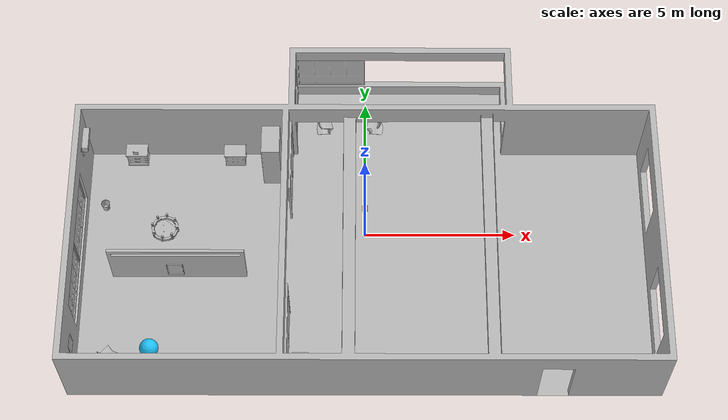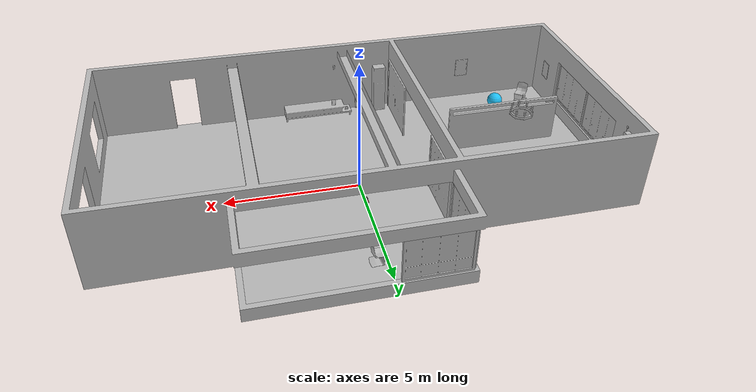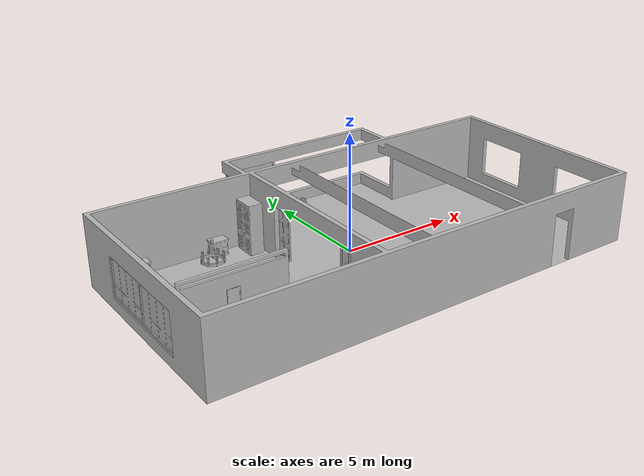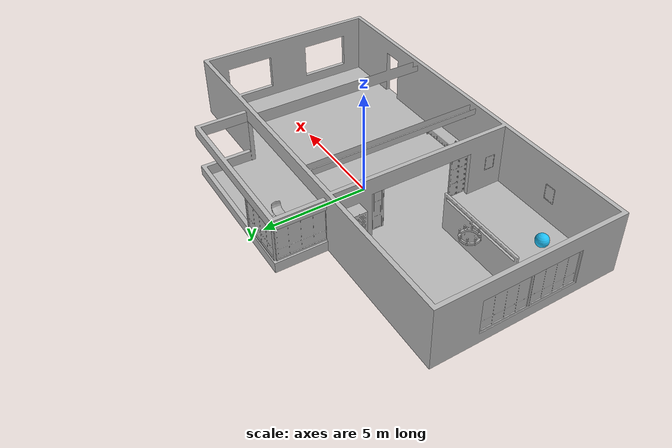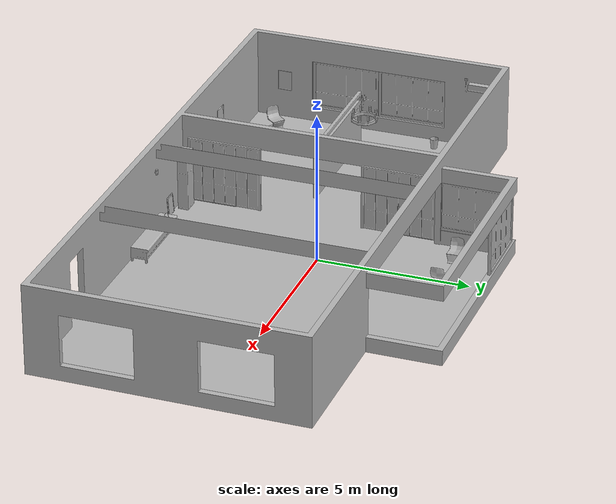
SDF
<sdf version="1.7">
 <world name="default">
  <model name="AirconditionerA_01_001">
   <frame name="aws_robomaker_residential_AirconditionerA_01::__model__" attached_to="aws_robomaker_residential_AirconditionerA_01::link">
    <pose relative_to="__model__">0 0 0 0 -0 0</pose>
   </frame>
   <link name="aws_robomaker_residential_AirconditionerA_01::link">
    <inertial><mass>1</mass></inertial>
    <collision name="collision">
     <geometry>
      <mesh>
       <uri>model:///aws_robomaker_residential_AirconditionerA_01/meshes/aws_AirconditionerA_01_collision.DAE</uri>
       <scale>1 1 1</scale>
      </mesh>
     </geometry>
    </collision>
    <visual name="visual">
     <geometry>
      <mesh>
       <uri>model:///aws_robomaker_residential_AirconditionerA_01/meshes/aws_AirconditionerA_01_visual.DAE</uri>
      </mesh>
     </geometry>
     <meta><layer>1</layer></meta>
    </visual>
    <pose relative_to="aws_robomaker_residential_AirconditionerA_01::__model__">0 0 0 0 -0 0</pose>
   </link>
   <static>1</static>
   <pose>-9.19941 2.41123 2.08454 0 -0 0</pose>
  </model>
  <model name="AirconditionerB_01_001">
   <frame name="aws_robomaker_residential_AirconditionerB_01::__model__" attached_to="aws_robomaker_residential_AirconditionerB_01::link">
    <pose relative_to="__model__">0 0 0 0 -0 0</pose>
   </frame>
   <link name="aws_robomaker_residential_AirconditionerB_01::link">
    <inertial>
     <mass>1</mass>
     <inertia><ixx>1</ixx><ixy>0</ixy><ixz>0</ixz><iyy>1</iyy><iyz>0</iyz><izz>1</izz></inertia>
    </inertial>
    <collision name="collision">
     <geometry>
      <mesh>
       <uri>model:///aws_robomaker_residential_AirconditionerB_01/meshes/aws_AirconditionerB_01_collision.DAE</uri>
       <scale>1 1 1</scale>
      </mesh>
     </geometry>
    </collision>
    <visual name="visual">
     <geometry>
      <mesh>
       <uri>model:///aws_robomaker_residential_AirconditionerB_01/meshes/aws_AirconditionerB_01_visual.DAE</uri>
      </mesh>
     </geometry>
     <meta><layer>1</layer></meta>
    </visual>
    <pose relative_to="aws_robomaker_residential_AirconditionerB_01::__model__">0 0 0 0 -0 0</pose>
   </link>
   <pose>-2.00466 -5.22661 0.003485 0 -0 0</pose>
  </model>
  <model name="Ball_01_003">
   <frame name="aws_robomaker_residential_Ball_01::__model__" attached_to="aws_robomaker_residential_Ball_01::link">
    <pose relative_to="__model__">0 0 0 0 -0 0</pose>
   </frame>
   <link name="aws_robomaker_residential_Ball_01::link">
    <inertial>
     <mass>0.12</mass>
     <inertia>
      <ixx>0.030752</ixx>
      <ixy>0</ixy>
      <ixz>0</ixz>
      <iyy>0.030752</iyy>
      <iyz>0</iyz>
      <izz>0.030752</izz>
     </inertia>
    </inertial>
    <collision name="collision">
     <geometry><sphere><radius>0.31</radius></sphere></geometry>
     <surface>
      <friction><ode><mu>0.85</mu><mu2>0.85</mu2></ode></friction>
      <contact><ode><kd>8500</kd><max_vel>5.1</max_vel></ode></contact>
     </surface>
    </collision>
    <visual name="visual">
     <geometry><sphere><radius>0.31</radius></sphere></geometry>
     <material><diffuse>0.12 0.76 0.97 1</diffuse><ambient>0.03 0.21 0.27 1</ambient></material>
     <meta><layer>1</layer></meta>
    </visual>
    <pose relative_to="aws_robomaker_residential_Ball_01::__model__">0 0 0 0 -0 0</pose>
   </link>
   <pose>-6.9455 -4.22174 0.318684 0 -0 0</pose>
  </model>
  <model name="NightStand_01_001">
   <frame name="aws_robomaker_residential_NightStand_01::__model__" attached_to="aws_robomaker_residential_NightStand_01::link">
    <pose relative_to="__model__">0 0 0 0 -0 0</pose>
   </frame>
   <link name="aws_robomaker_residential_NightStand_01::link">
    <inertial>
     <mass>13.6</mass>
     <inertia><ixx>0.6165</ixx><ixy>0</ixy><ixz>0</ixz><iyy>1.29664</iyy><iyz>0</iyz><izz>0.7706</izz></inertia>
    </inertial>
    <collision name="collision">
     <geometry>
      <mesh>
       <uri>model:///aws_robomaker_residential_NightStand_01/meshes/aws_NightStand_01_collision.DAE</uri>
       <scale>1 1 1</scale>
      </mesh>
     </geometry>
    </collision>
    <visual name="visual">
     <geometry>
      <mesh><uri>model:///aws_robomaker_residential_NightStand_01/meshes/aws_NightStand_01_visual.DAE</uri></mesh>
     </geometry>
     <meta><layer>1</layer></meta>
    </visual>
    <pose relative_to="aws_robomaker_residential_NightStand_01::__model__">0 0 0 0 -0 0</pose>
   </link>
   <static>0</static>
   <pose>-7.72551 2.86042 0.005258 -2e-06 0 0</pose>
  </model>
  <model name="NightStand_01_002">
   <frame name="aws_robomaker_residential_NightStand_01::__model__" attached_to="aws_robomaker_residential_NightStand_01::link">
    <pose relative_to="__model__">0 0 0 0 -0 0</pose>
   </frame>
   <link name="aws_robomaker_residential_NightStand_01::link">
    <inertial>
     <mass>13.6</mass>
     <inertia><ixx>0.6165</ixx><ixy>0</ixy><ixz>0</ixz><iyy>1.29664</iyy><iyz>0</iyz><izz>0.7706</izz></inertia>
    </inertial>
    <collision name="collision">
     <geometry>
      <mesh>
       <uri>model:///aws_robomaker_residential_NightStand_01/meshes/aws_NightStand_01_collision.DAE</uri>
       <scale>1 1 1</scale>
      </mesh>
     </geometry>
    </collision>
    <visual name="visual">
     <geometry>
      <mesh><uri>model:///aws_robomaker_residential_NightStand_01/meshes/aws_NightStand_01_visual.DAE</uri></mesh>
     </geometry>
     <meta><layer>1</layer></meta>
    </visual>
    <pose relative_to="aws_robomaker_residential_NightStand_01::__model__">0 0 0 0 -0 0</pose>
   </link>
   <static>0</static>
   <pose>-4.40734 2.86042 0.005256 0 2e-06 0</pose>
  </model>
  <model name="ChairD_01_001">
   <frame name="aws_robomaker_residential_ChairD_01::__model__" attached_to="aws_robomaker_residential_ChairD_01::link">
    <pose relative_to="__model__">0 0 0 0 -0 0</pose>
   </frame>
   <link name="aws_robomaker_residential_ChairD_01::link">
    <inertial>
     <mass>4.5</mass>
     <inertia><ixy>0</ixy><ixz>0</ixz><iyz>0</iyz><ixx>0.217</ixx><iyy>0.217</iyy><izz>0.067</izz></inertia>
    </inertial>
    <collision name="collision">
     <geometry>
      <mesh>
       <uri>model:///aws_robomaker_residential_ChairD_01/meshes/aws_ChairD_01_collision.DAE</uri>
       <scale>1 1 1</scale>
      </mesh>
     </geometry>
    </collision>
    <visual name="visual">
     <geometry>
      <mesh><uri>model:///aws_robomaker_residential_ChairD_01/meshes/aws_ChairD_01_visual.DAE</uri></mesh>
     </geometry>
     <meta><layer>1</layer></meta>
    </visual>
    <pose relative_to="aws_robomaker_residential_ChairD_01::__model__">0 0 0 0 -0 0</pose>
   </link>
   <pose>-1.38078 4.10446 0 0 -0 0</pose>
  </model>
  <model name="ChairD_01_002">
   <frame name="aws_robomaker_residential_ChairD_01::__model__" attached_to="aws_robomaker_residential_ChairD_01::link">
    <pose relative_to="__model__">0 0 0 0 -0 0</pose>
   </frame>
   <link name="aws_robomaker_residential_ChairD_01::link">
    <inertial>
     <mass>4.5</mass>
     <inertia><ixy>0</ixy><ixz>0</ixz><iyz>0</iyz><ixx>0.217</ixx><iyy>0.217</iyy><izz>0.067</izz></inertia>
    </inertial>
    <collision name="collision">
     <geometry>
      <mesh>
       <uri>model:///aws_robomaker_residential_ChairD_01/meshes/aws_ChairD_01_collision.DAE</uri>
       <scale>1 1 1</scale>
      </mesh>
     </geometry>
    </collision>
    <visual name="visual">
     <geometry>
      <mesh><uri>model:///aws_robomaker_residential_ChairD_01/meshes/aws_ChairD_01_visual.DAE</uri></mesh>
     </geometry>
     <meta><layer>1</layer></meta>
    </visual>
    <pose relative_to="aws_robomaker_residential_ChairD_01::__model__">0 0 0 0 -0 0</pose>
   </link>
   <pose>0.325214 4.10446 0 0 0 -3.13874</pose>
  </model>
  <model name="ChairD_01_003">
   <frame name="aws_robomaker_residential_ChairD_01::__model__" attached_to="aws_robomaker_residential_ChairD_01::link">
    <pose relative_to="__model__">0 0 0 0 -0 0</pose>
   </frame>
   <link name="aws_robomaker_residential_ChairD_01::link">
    <inertial>
     <mass>4.5</mass>
     <inertia><ixy>0</ixy><ixz>0</ixz><iyz>0</iyz><ixx>0.217</ixx><iyy>0.217</iyy><izz>0.067</izz></inertia>
    </inertial>
    <collision name="collision">
     <geometry>
      <mesh>
       <uri>model:///aws_robomaker_residential_ChairD_01/meshes/aws_ChairD_01_collision.DAE</uri>
       <scale>1 1 1</scale>
      </mesh>
     </geometry>
    </collision>
    <visual name="visual">
     <geometry>
      <mesh><uri>model:///aws_robomaker_residential_ChairD_01/meshes/aws_ChairD_01_visual.DAE</uri></mesh>
     </geometry>
     <meta><layer>1</layer></meta>
    </visual>
    <pose relative_to="aws_robomaker_residential_ChairD_01::__model__">0 0 0 0 -0 0</pose>
   </link>
   <pose>-8.27078 -4.50446 0 0 -0 0.869673</pose>
  </model>
  <model name="Chandelier_01_002">
   <frame name="aws_robomaker_residential_Chandelier_01::__model__" attached_to="aws_robomaker_residential_Chandelier_01::link">
    <pose relative_to="__model__">0 0 0 0 -0 0</pose>
   </frame>
   <link name="aws_robomaker_residential_Chandelier_01::link">
    <inertial><mass>1</mass></inertial>
    <collision name="collision">
     <geometry>
      <mesh>
       <uri>model:///aws_robomaker_residential_Chandelier_01/meshes/aws_Chandelier_01_collision.DAE</uri>
       <scale>1 1 1</scale>
      </mesh>
     </geometry>
    </collision>
    <visual name="visual">
     <geometry>
      <mesh><uri>model:///aws_robomaker_residential_Chandelier_01/meshes/aws_Chandelier_01_visual.DAE</uri></mesh>
     </geometry>
     <meta><layer>2</layer></meta>
    </visual>
    <pose relative_to="aws_robomaker_residential_Chandelier_01::__model__">0 0 0 0 -0 0</pose>
   </link>
   <static>1</static>
   <pose>-6.45106 -0.69204 1.81 0 -0 0</pose>
  </model>
  <model name="FoldingDoor_01_001">
   <frame name="aws_robomaker_residential_FoldingDoor_01::__model__" attached_to="aws_robomaker_residential_FoldingDoor_01::link">
    <pose relative_to="__model__">0 0 0 0 -0 0</pose>
   </frame>
   <link name="aws_robomaker_residential_FoldingDoor_01::link">
    <inertial><mass>1</mass></inertial>
    <collision name="collision">
     <geometry>
      <mesh>
       <uri>model:///aws_robomaker_residential_FoldingDoor_01/meshes/aws_FoldingDoor_01_collision.DAE</uri>
       <scale>1 1 1</scale>
      </mesh>
     </geometry>
    </collision>
    <visual name="visual">
     <geometry>
      <mesh><uri>model:///aws_robomaker_residential_FoldingDoor_01/meshes/aws_FoldingDoor_01_visual.DAE</uri></mesh>
     </geometry>
     <meta><layer>2</layer></meta>
    </visual>
    <pose relative_to="aws_robomaker_residential_FoldingDoor_01::__model__">0 0 0 0 -0 0</pose>
   </link>
   <static>1</static>
   <pose>-2.4611 1.84422 0.041881 0 -0 0</pose>
  </model>
  <model name="FoldingDoor_01_002">
   <frame name="aws_robomaker_residential_FoldingDoor_01::__model__" attached_to="aws_robomaker_residential_FoldingDoor_01::link">
    <pose relative_to="__model__">0 0 0 0 -0 0</pose>
   </frame>
   <link name="aws_robomaker_residential_FoldingDoor_01::link">
    <inertial><mass>1</mass></inertial>
    <collision name="collision">
     <geometry>
      <mesh>
       <uri>model:///aws_robomaker_residential_FoldingDoor_01/meshes/aws_FoldingDoor_01_collision.DAE</uri>
       <scale>1 1 1</scale>
      </mesh>
     </geometry>
    </collision>
    <visual name="visual">
     <geometry>
      <mesh><uri>model:///aws_robomaker_residential_FoldingDoor_01/meshes/aws_FoldingDoor_01_visual.DAE</uri></mesh>
     </geometry>
     <meta><layer>2</layer></meta>
    </visual>
    <pose relative_to="aws_robomaker_residential_FoldingDoor_01::__model__">0 0 0 0 -0 0</pose>
   </link>
   <static>1</static>
   <pose>-2.4611 -4.05332 0.041881 0 -0 0</pose>
  </model>
  <model name="HouseWallB_01_001">
   <frame name="aws_robomaker_residential_HouseWallB_01::__model__" attached_to="aws_robomaker_residential_HouseWallB_01::link">
    <pose relative_to="__model__">0 0 0 0 -0 0</pose>
   </frame>
   <link name="aws_robomaker_residential_HouseWallB_01::link">
    <inertial><mass>1</mass></inertial>
    <collision name="collision">
     <geometry>
      <mesh>
       <uri>model:///aws_robomaker_residential_HouseWallB_01/meshes/aws_HouseWallB_01_collision.DAE</uri>
       <scale>1 1 1</scale>
      </mesh>
     </geometry>
    </collision>
    <visual name="visual">
     <geometry>
      <mesh><uri>model:///aws_robomaker_residential_HouseWallB_01/meshes/aws_HouseWallB_01_visual.DAE</uri></mesh>
     </geometry>
     <meta><layer>2</layer></meta>
    </visual>
    <pose relative_to="aws_robomaker_residential_HouseWallB_01::__model__">0 0 0 0 -0 0</pose>
   </link>
   <static>1</static>
  </model>
  <model name="FloorB_01_001">
   <frame name="aws_robomaker_residential_FloorB_01::__model__" attached_to="aws_robomaker_residential_FloorB_01::link">
    <pose relative_to="__model__">0 0 0 0 -0 0</pose>
   </frame>
   <link name="aws_robomaker_residential_FloorB_01::link">
    <inertial><mass>100</mass></inertial>
    <collision name="collision">
     <geometry>
      <mesh>
       <uri>model:///aws_robomaker_residential_FloorB_01/meshes/aws_FloorB_01_collision.DAE</uri>
       <scale>1 1 0.9</scale>
      </mesh>
     </geometry>
     <surface><friction><ode><mu>0.6</mu><mu2>0.6</mu2></ode></friction></surface>
    </collision>
    <visual name="visual">
     <geometry>
      <mesh><uri>model:///aws_robomaker_residential_FloorB_01/meshes/aws_FloorB_01_visual.DAE</uri></mesh>
     </geometry>
     <meta><layer>1</layer></meta>
    </visual>
    <pose relative_to="aws_robomaker_residential_FloorB_01::__model__">0 0 0 0 -0 0</pose>
   </link>
   <static>1</static>
  </model>
  <model name="LightC_01_002">
   <frame name="aws_robomaker_residential_LightC_01::__model__" attached_to="aws_robomaker_residential_LightC_01::link">
    <pose relative_to="__model__">0 0 0 0 -0 0</pose>
   </frame>
   <link name="aws_robomaker_residential_LightC_01::link">
    <inertial>
     <mass>1</mass>
     <inertia><ixx>1</ixx><ixy>0</ixy><ixz>0</ixz><iyy>1</iyy><iyz>0</iyz><izz>1</izz></inertia>
    </inertial>
    <collision name="collision">
     <geometry>
      <mesh>
       <uri>model:///aws_robomaker_residential_LightC_01/meshes/aws_LightC_01_collision.DAE</uri>
       <scale>1 1 1</scale>
      </mesh>
     </geometry>
    </collision>
    <visual name="visual">
     <geometry>
      <mesh><uri>model:///aws_robomaker_residential_LightC_01/meshes/aws_LightC_01_visual.DAE</uri></mesh>
     </geometry>
     <meta><layer>2</layer></meta>
    </visual>
    <pose relative_to="aws_robomaker_residential_LightC_01::__model__">0 0 0 0 -0 0</pose>
   </link>
   <static>0</static>
   <pose>-0.138245 -5.44437 2 0 -0 0</pose>
  </model>
  <model name="PortraitA_01">
   <frame name="aws_robomaker_residential_PortraitA_01::__model__" attached_to="aws_robomaker_residential_PortraitA_01::link">
    <pose relative_to="__model__">0 0 0 0 -0 0</pose>
   </frame>
   <link name="aws_robomaker_residential_PortraitA_01::link">
    <inertial><mass>1</mass></inertial>
    <collision name="collision">
     <geometry>
      <mesh>
       <uri>model:///aws_robomaker_residential_PortraitA_01/meshes/aws_PortraitA_01_collision.DAE</uri>
       <scale>1 1 1</scale>
      </mesh>
     </geometry>
    </collision>
    <visual name="visual">
     <geometry>
      <mesh><uri>model:///aws_robomaker_residential_PortraitA_01/meshes/aws_PortraitA_01_visual.DAE</uri></mesh>
     </geometry>
     <meta><layer>2</layer></meta>
    </visual>
    <pose relative_to="aws_robomaker_residential_PortraitA_01::__model__">0 0 0 0 -0 0</pose>
   </link>
   <static>1</static>
   <pose>-2.71236 -4.81754 1 0 -0 1.5668</pose>
  </model>
  <model name="PortraitB_01">
   <frame name="aws_robomaker_residential_PortraitB_01::__model__" attached_to="aws_robomaker_residential_PortraitB_01::link">
    <pose relative_to="__model__">0 0 0 0 -0 0</pose>
   </frame>
   <link name="aws_robomaker_residential_PortraitB_01::link">
    <inertial><mass>1</mass></inertial>
    <collision name="collision">
     <geometry>
      <mesh>
       <uri>model:///aws_robomaker_residential_PortraitB_01/meshes/aws_PortraitB_01_collision.DAE</uri>
       <scale>1 1 1</scale>
      </mesh>
     </geometry>
    </collision>
    <visual name="visual">
     <geometry>
      <mesh><uri>model:///aws_robomaker_residential_PortraitB_01/meshes/aws_PortraitB_01_visual.DAE</uri></mesh>
     </geometry>
     <meta><layer>2</layer></meta>
    </visual>
    <pose relative_to="aws_robomaker_residential_PortraitB_01::__model__">0 0 0 0 -0 0</pose>
   </link>
   <static>1</static>
   <pose>-1.27968 -5.42963 0 -0.076901 0 -3.11672</pose>
  </model>
  <model name="PortraitC_01">
   <frame name="aws_robomaker_residential_PortraitC_01::__model__" attached_to="aws_robomaker_residential_PortraitC_01::link">
    <pose relative_to="__model__">0 0 0 0 -0 0</pose>
   </frame>
   <link name="aws_robomaker_residential_PortraitC_01::link">
    <inertial><mass>1</mass></inertial>
    <collision name="collision">
     <geometry>
      <mesh>
       <uri>model:///aws_robomaker_residential_PortraitC_01/meshes/aws_PortraitC_01_collision.DAE</uri>
       <scale>1 1 1</scale>
      </mesh>
     </geometry>
    </collision>
    <visual name="visual">
     <geometry>
      <mesh><uri>model:///aws_robomaker_residential_PortraitC_01/meshes/aws_PortraitC_01_visual.DAE</uri></mesh>
     </geometry>
     <meta><layer>2</layer></meta>
    </visual>
    <pose relative_to="aws_robomaker_residential_PortraitC_01::__model__">0 0 0 0 -0 0</pose>
   </link>
   <static>1</static>
   <pose>-9.2949 -4.52608 1 0 -0 1.55473</pose>
  </model>
  <model name="PortraitE_01">
   <frame name="aws_robomaker_residential_PortraitE_01::__model__" attached_to="aws_robomaker_residential_PortraitE_01::link">
    <pose relative_to="__model__">0 0 0 0 -0 0</pose>
   </frame>
   <link name="aws_robomaker_residential_PortraitE_01::link">
    <inertial><mass>1</mass></inertial>
    <collision name="collision">
     <geometry>
      <mesh>
       <uri>model:///aws_robomaker_residential_PortraitE_01/meshes/aws_PortraitE_01_collision.DAE</uri>
       <scale>1 1 1</scale>
      </mesh>
     </geometry>
    </collision>
    <visual name="visual">
     <geometry>
      <mesh><uri>model:///aws_robomaker_residential_PortraitE_01/meshes/aws_PortraitE_01_visual.DAE</uri></mesh>
     </geometry>
     <meta><layer>2</layer></meta>
    </visual>
    <pose relative_to="aws_robomaker_residential_PortraitE_01::__model__">0 0 0 0 -0 0</pose>
   </link>
   <static>1</static>
   <pose>-5.77309 -5.49247 1 0 -0 3.13263</pose>
  </model>
  <model name="PortraitE_02">
   <frame name="aws_robomaker_residential_PortraitE_02::__model__" attached_to="aws_robomaker_residential_PortraitE_02::link">
    <pose relative_to="__model__">0 0 0 0 -0 0</pose>
   </frame>
   <link name="aws_robomaker_residential_PortraitE_02::link">
    <inertial><mass>1</mass></inertial>
    <collision name="collision">
     <geometry>
      <mesh>
       <uri>model:///aws_robomaker_residential_PortraitE_02/meshes/aws_PortraitE_01_collision.DAE</uri>
       <scale>1 1 1</scale>
      </mesh>
     </geometry>
    </collision>
    <visual name="visual">
     <geometry>
      <mesh><uri>model:///aws_robomaker_residential_PortraitE_02/meshes/aws_PortraitE_01_visual.DAE</uri></mesh>
     </geometry>
     <meta><layer>2</layer></meta>
    </visual>
    <pose relative_to="aws_robomaker_residential_PortraitE_02::__model__">0 0 0 0 -0 0</pose>
   </link>
   <static>1</static>
   <pose>-6.19302 -1.59021 0.3 0 -0 0.00429</pose>
  </model>
  <model name="DeskPortraitA_01">
   <frame name="aws_robomaker_residential_DeskPortraitA_01::__model__" attached_to="aws_robomaker_residential_DeskPortraitA_01::link">
    <pose relative_to="__model__">0 0 0 0 -0 0</pose>
   </frame>
   <link name="aws_robomaker_residential_DeskPortraitA_01::link">
    <inertial>
     <mass>1</mass>
     <inertia><ixx>0.0835</ixx><ixy>0</ixy><ixz>0</ixz><iyy>0.16</iyy><iyz>0</iyz><izz>0.08347</izz></inertia>
    </inertial>
    <collision name="collision">
     <geometry>
      <mesh>
       <uri>model:///aws_robomaker_residential_DeskPortraitA_01/meshes/aws_DeskPortraitA_01_collision.DAE</uri>
       <scale>1 1 1</scale>
      </mesh>
     </geometry>
    </collision>
    <visual name="visual">
     <geometry>
      <mesh>
       <uri>model:///aws_robomaker_residential_DeskPortraitA_01/meshes/aws_DeskPortraitA_01_visual.DAE</uri>
      </mesh>
     </geometry>
     <meta><layer>1</layer></meta>
    </visual>
    <pose relative_to="aws_robomaker_residential_DeskPortraitA_01::__model__">0 0 0 0 -0 0</pose>
   </link>
   <pose>-0.036864 -5.11016 0.49866 0 -0 2.92778</pose>
  </model>
  <model name="DeskPortraitC_01">
   <frame name="aws_robomaker_residential_DeskPortraitC_01::__model__" attached_to="aws_robomaker_residential_DeskPortraitC_01::link">
    <pose relative_to="__model__">0 0 0 0 -0 0</pose>
   </frame>
   <link name="aws_robomaker_residential_DeskPortraitC_01::link">
    <inertial>
     <mass>1</mass>
     <inertia><ixx>0.0835</ixx><ixy>0</ixy><ixz>0</ixz><iyy>0.16</iyy><iyz>0</iyz><izz>0.08347</izz></inertia>
    </inertial>
    <collision name="collision">
     <geometry>
      <mesh>
       <uri>model:///aws_robomaker_residential_DeskPortraitC_01/meshes/aws_DeskPortraitC_01_collision.DAE</uri>
       <scale>1 1 1</scale>
      </mesh>
     </geometry>
    </collision>
    <visual name="visual">
     <geometry>
      <mesh>
       <uri>model:///aws_robomaker_residential_DeskPortraitC_01/meshes/aws_DeskPortraitC_01_visual.DAE</uri>
      </mesh>
     </geometry>
     <meta><layer>1</layer></meta>
    </visual>
    <pose relative_to="aws_robomaker_residential_DeskPortraitC_01::__model__">0 0 0 0 -0 0</pose>
   </link>
   <pose>-7.74638 2.73108 0.69462 0.000488 -0.000359 -0.055499</pose>
  </model>
  <model name="DeskPortraitD_02">
   <frame name="aws_robomaker_residential_DeskPortraitD_02::__model__" attached_to="aws_robomaker_residential_DeskPortraitD_02::link">
    <pose relative_to="__model__">0 0 0 0 -0 0</pose>
   </frame>
   <link name="aws_robomaker_residential_DeskPortraitD_02::link">
    <inertial>
     <mass>0.4</mass>
     <inertia><ixx>0.0616</ixx><ixy>0</ixy><ixz>0</ixz><iyy>0.1313</iyy><iyz>0</iyz><izz>0.0803</izz></inertia>
    </inertial>
    <collision name="collision">
     <geometry>
      <mesh>
       <uri>model:///aws_robomaker_residential_DeskPortraitD_02/meshes/aws_DeskPortraitD_01_collision.DAE</uri>
       <scale>1 1 1</scale>
      </mesh>
     </geometry>
     <surface>
      <friction><ode><mu>0.7</mu><mu2>0.7</mu2></ode></friction>
      <contact><ode><kd>28500</kd></ode></contact>
     </surface>
    </collision>
    <visual name="visual">
     <geometry>
      <mesh>
       <uri>model:///aws_robomaker_residential_DeskPortraitD_02/meshes/aws_DeskPortraitD_01_visual.DAE</uri>
      </mesh>
     </geometry>
     <meta><layer>1</layer></meta>
    </visual>
    <pose relative_to="aws_robomaker_residential_DeskPortraitD_02::__model__">0 0 0 0 -0 0</pose>
   </link>
   <pose>-0.589211 -5.10989 0.192145 -1.5e-05 -0.000174 -3.11254</pose>
  </model>
  <model name="Trash_01_002">
   <frame name="aws_robomaker_residential_Trash_01::__model__" attached_to="aws_robomaker_residential_Trash_01::link">
    <pose relative_to="__model__">0 0 0 0 -0 0</pose>
   </frame>
   <link name="aws_robomaker_residential_Trash_01::link">
    <inertial>
     <mass>0.1</mass>
     <inertia><ixy>0</ixy><ixz>0</ixz><iyz>0</iyz><ixx>0.05288</ixx><iyy>0.05288</iyy><izz>0.09132</izz></inertia>
    </inertial>
    <collision name="collision">
     <geometry>
      <mesh>
       <uri>model:///aws_robomaker_residential_Trash_01/meshes/aws_Trash_01_collision.DAE</uri>
       <scale>1 1 1</scale>
      </mesh>
     </geometry>
    </collision>
    <visual name="visual">
     <geometry>
      <mesh><uri>model:///aws_robomaker_residential_Trash_01/meshes/aws_Trash_01_visual.DAE</uri></mesh>
     </geometry>
     <meta><layer>1</layer></meta>
    </visual>
    <pose relative_to="aws_robomaker_residential_Trash_01::__model__">0 0 0 0 -0 0</pose>
   </link>
   <pose>-8.70415 1.00058 0.011 0 -0 0</pose>
  </model>
  <model name="TVCabinet_01_001">
   <frame name="aws_robomaker_residential_TVCabinet_01::__model__" attached_to="aws_robomaker_residential_TVCabinet_01::link">
    <pose relative_to="__model__">0 0 0 0 -0 0</pose>
   </frame>
   <link name="aws_robomaker_residential_TVCabinet_01::link">
    <inertial>
     <mass>59.2</mass>
     <inertia><ixx>30.4</ixx><ixy>0</ixy><ixz>0</ixz><iyy>2.56</iyy><iyz>0</iyz><izz>31.38</izz></inertia>
    </inertial>
    <collision name="collision">
     <geometry>
      <mesh>
       <uri>model:///aws_robomaker_residential_TVCabinet_01/meshes/aws_TVCabinet_01_collision.DAE</uri>
       <scale>1 1 1</scale>
      </mesh>
     </geometry>
    </collision>
    <visual name="visual">
     <geometry>
      <mesh><uri>model:///aws_robomaker_residential_TVCabinet_01/meshes/aws_TVCabinet_01_visual.DAE</uri></mesh>
     </geometry>
     <meta><layer>1</layer></meta>
    </visual>
    <pose relative_to="aws_robomaker_residential_TVCabinet_01::__model__">0 0 0 0 -0 0</pose>
   </link>
   <static>1</static>
   <pose>0.629509 -5.18358 -0.017049 0 -0 1.5792</pose>
  </model>
  <model name="RoomWall_01_001">
   <frame name="aws_robomaker_residential_RoomWall_01::__model__" attached_to="aws_robomaker_residential_RoomWall_01::link">
    <pose relative_to="__model__">0 0 0 0 -0 0</pose>
   </frame>
   <link name="aws_robomaker_residential_RoomWall_01::link">
    <inertial><mass>100</mass></inertial>
    <collision name="collision">
     <geometry>
      <mesh>
       <uri>model:///aws_robomaker_residential_RoomWall_01/meshes/aws_RoomWall_01_collision.DAE</uri>
       <scale>1 1 1</scale>
      </mesh>
     </geometry>
    </collision>
    <visual name="visual">
     <geometry>
      <mesh><uri>model:///aws_robomaker_residential_RoomWall_01/meshes/aws_RoomWall_01_visual.DAE</uri></mesh>
     </geometry>
     <meta><layer>2</layer></meta>
    </visual>
    <pose relative_to="aws_robomaker_residential_RoomWall_01::__model__">0 0 0 0 -0 0</pose>
   </link>
   <static>1</static>
   <pose>-6.09755 -1.49618 0.028124 0 -0 0</pose>
  </model>
  <model name="Wardrobe_01_001">
   <frame name="aws_robomaker_residential_Wardrobe_01::__model__" attached_to="aws_robomaker_residential_Wardrobe_01::link">
    <pose relative_to="__model__">0 0 0 0 -0 0</pose>
   </frame>
   <link name="aws_robomaker_residential_Wardrobe_01::link">
    <inertial>
     <mass>51.7</mass>
     <inertia><ixx>1</ixx><ixy>0</ixy><ixz>0</ixz><iyy>1</iyy><iyz>0</iyz><izz>1</izz></inertia>
    </inertial>
    <collision name="collision">
     <geometry>
      <mesh>
       <uri>model:///aws_robomaker_residential_Wardrobe_01/meshes/aws_Wardrobe_01_collision.DAE</uri>
       <scale>1 1 1</scale>
      </mesh>
     </geometry>
    </collision>
    <visual name="visual">
     <geometry>
      <mesh><uri>model:///aws_robomaker_residential_Wardrobe_01/meshes/aws_Wardrobe_01_visual.DAE</uri></mesh>
     </geometry>
     <meta><layer>1</layer></meta>
    </visual>
    <pose relative_to="aws_robomaker_residential_Wardrobe_01::__model__">0 0 0 0 -0 0</pose>
   </link>
   <static>0</static>
   <pose>-3.14671 2.4762 0.000704 0 0 -1.56967</pose>
  </model>
  <model name="RoomWindow_01_001">
   <frame name="aws_robomaker_residential_RoomWindow_01::__model__" attached_to="aws_robomaker_residential_RoomWindow_01::link">
    <pose relative_to="__model__">0 0 0 0 -0 0</pose>
   </frame>
   <link name="aws_robomaker_residential_RoomWindow_01::link">
    <inertial><mass>1</mass></inertial>
    <collision name="collision">
     <geometry>
      <mesh>
       <uri>model:///aws_robomaker_residential_RoomWindow_01/meshes/aws_RoomWindow_01_collision.DAE</uri>
       <scale>1 1 1</scale>
      </mesh>
     </geometry>
    </collision>
    <visual name="visual">
     <geometry>
      <mesh><uri>model:///aws_robomaker_residential_RoomWindow_01/meshes/aws_RoomWindow_01_visual.DAE</uri></mesh>
     </geometry>
     <meta><layer>2</layer></meta>
    </visual>
    <pose relative_to="aws_robomaker_residential_RoomWindow_01::__model__">0 0 0 0 -0 0</pose>
   </link>
   <static>1</static>
   <pose>-9.4186 -0.026285 0.502739 0 -0 0</pose>
  </model>
  <model name="RoomWindow_01_002">
   <frame name="aws_robomaker_residential_RoomWindow_01::__model__" attached_to="aws_robomaker_residential_RoomWindow_01::link">
    <pose relative_to="__model__">0 0 0 0 -0 0</pose>
   </frame>
   <link name="aws_robomaker_residential_RoomWindow_01::link">
    <inertial><mass>1</mass></inertial>
    <collision name="collision">
     <geometry>
      <mesh>
       <uri>model:///aws_robomaker_residential_RoomWindow_01/meshes/aws_RoomWindow_01_collision.DAE</uri>
       <scale>1 1 1</scale>
      </mesh>
     </geometry>
    </collision>
    <visual name="visual">
     <geometry>
      <mesh><uri>model:///aws_robomaker_residential_RoomWindow_01/meshes/aws_RoomWindow_01_visual.DAE</uri></mesh>
     </geometry>
     <meta><layer>2</layer></meta>
    </visual>
    <pose relative_to="aws_robomaker_residential_RoomWindow_01::__model__">0 0 0 0 -0 0</pose>
   </link>
   <static>1</static>
   <pose>-9.4186 -2.37409 0.502739 0 -0 0</pose>
  </model>
  <model name="RoomWindow_01_008">
   <frame name="aws_robomaker_residential_RoomWindow_01::__model__" attached_to="aws_robomaker_residential_RoomWindow_01::link">
    <pose relative_to="__model__">0 0 0 0 -0 0</pose>
   </frame>
   <link name="aws_robomaker_residential_RoomWindow_01::link">
    <inertial><mass>1</mass></inertial>
    <collision name="collision">
     <geometry>
      <mesh>
       <uri>model:///aws_robomaker_residential_RoomWindow_01/meshes/aws_RoomWindow_01_collision.DAE</uri>
       <scale>1 1 1</scale>
      </mesh>
     </geometry>
    </collision>
    <visual name="visual">
     <geometry>
      <mesh><uri>model:///aws_robomaker_residential_RoomWindow_01/meshes/aws_RoomWindow_01_visual.DAE</uri></mesh>
     </geometry>
     <meta><layer>2</layer></meta>
    </visual>
    <pose relative_to="aws_robomaker_residential_RoomWindow_01::__model__">0 0 0 0 -0 0</pose>
   </link>
   <static>1</static>
   <pose>-1.19934 5.60069 0.502739 0 0 -1.56627</pose>
  </model>
  <model name="RoomWindow_01_009">
   <frame name="aws_robomaker_residential_RoomWindow_01::__model__" attached_to="aws_robomaker_residential_RoomWindow_01::link">
    <pose relative_to="__model__">0 0 0 0 -0 0</pose>
   </frame>
   <link name="aws_robomaker_residential_RoomWindow_01::link">
    <inertial><mass>1</mass></inertial>
    <collision name="collision">
     <geometry>
      <mesh>
       <uri>model:///aws_robomaker_residential_RoomWindow_01/meshes/aws_RoomWindow_01_collision.DAE</uri>
       <scale>1 1 1</scale>
      </mesh>
     </geometry>
    </collision>
    <visual name="visual">
     <geometry>
      <mesh><uri>model:///aws_robomaker_residential_RoomWindow_01/meshes/aws_RoomWindow_01_visual.DAE</uri></mesh>
     </geometry>
     <meta><layer>2</layer></meta>
    </visual>
    <pose relative_to="aws_robomaker_residential_RoomWindow_01::__model__">0 0 0 0 -0 0</pose>
   </link>
   <static>1</static>
   <pose>-2.39662 4.38761 0.502739 0 -0 0</pose>
  </model>
  <model name="rosbot">
   <link name="base_link">
    <inertial>
     <pose>-0 0 0.04003 0 -0 0</pose>
     <mass>5.01002</mass>
     <inertia>
      <ixx>0.0100024</ixx>
      <ixy>0.01</ixy>
      <ixz>3.8397e-08</ixz>
      <iyy>0.0100025</iyy>
      <iyz>0.01</iyz>
      <izz>0.01</izz>
     </inertia>
    </inertial>
    <collision name="base_link_fixed_joint_lump__body_link_collision">
     <pose>0 0 0.02 0 -0 0</pose>
     <geometry><box><size>0.2 0.15 0.04</size></box></geometry>
    </collision>
    <collision name="base_link_fixed_joint_lump__camera_link_collision_1">
     <pose>-0.01 0 0.18 0 -0 0</pose>
     <geometry><box><size>0.001 0.001 0.001</size></box></geometry>
    </collision>
    <collision name="base_link_fixed_joint_lump__laser_collision_2">
     <pose>0.02 0 0.058 1.5707 0 1.56682</pose>
     <geometry>
      <mesh>
       <scale>0.001 0.001 0.001</scale>
       <uri>/home/reisub-laptop/UCR/cris/viz_lang/ros_ws/src/rosbot_description/src/rosbot_description/meshes/rplidar.stl</uri>
      </mesh>
     </geometry>
    </collision>
    <visual name="base_link_fixed_joint_lump__body_link_visual">
     <pose>0 0 -0.02 1.5707 0 1.5707</pose>
     <geometry>
      <mesh>
       <scale>0.001 0.001 0.001</scale>
       <uri>/home/reisub-laptop/UCR/cris/viz_lang/ros_ws/src/rosbot_description/src/rosbot_description/meshes/box.stl</uri>
      </mesh>
     </geometry>
    </visual>
    <visual name="base_link_fixed_joint_lump__camera_link_visual_1">
     <pose>-0.04 0 0.15 1.5707 0 1.5707</pose>
     <geometry>
      <mesh>
       <scale>0.001 0.001 0.001</scale>
       <uri>/home/reisub-laptop/UCR/cris/viz_lang/ros_ws/src/rosbot_description/src/rosbot_description/meshes/astra.stl</uri>
      </mesh>
     </geometry>
     <material>
      <script><name>Gazebo/Black</name><uri>file://media/materials/scripts/gazebo.material</uri></script>
     </material>
    </visual>
    <visual name="base_link_fixed_joint_lump__laser_visual_2">
     <pose>0.02 0 0.058 1.5707 0 1.56682</pose>
     <geometry>
      <mesh>
       <scale>0.001 0.001 0.001</scale>
       <uri>/home/reisub-laptop/UCR/cris/viz_lang/ros_ws/src/rosbot_description/src/rosbot_description/meshes/rplidar.stl</uri>
      </mesh>
     </geometry>
     <material>
      <script><name>Gazebo/Black</name><uri>file://media/materials/scripts/gazebo.material</uri></script>
     </material>
    </visual>
    <visual name="base_link_fixed_joint_lump__top_visual_3">
     <pose>0 0 0.055 1.5707 0 1.5707</pose>
     <geometry>
      <mesh>
       <scale>0.001 0.001 0.001</scale>
       <uri>/home/reisub-laptop/UCR/cris/viz_lang/ros_ws/src/rosbot_description/src/rosbot_description/meshes/upper.stl</uri>
      </mesh>
     </geometry>
     <material>
      <script><name>Gazebo/Red</name><uri>file://media/materials/scripts/gazebo.material</uri></script>
     </material>
    </visual>
    <sensor name="openni_camera_camera" type="depth">
     <always_on>1</always_on>
     <visualize>1</visualize>
     <camera>
      <horizontal_fov>1.047</horizontal_fov>
      <image><width>640</width><height>480</height><format>R8G8B8</format></image>
      <depth_camera><output>depths</output></depth_camera>
      <clip><near>0.1</near><far>100</far></clip>
     </camera>
     <plugin name="kinect_controller" filename="libgazebo_ros_openni_kinect.so">
      <alwaysOn>1</alwaysOn>
      <updateRate>10.0</updateRate>
      <cameraName>camera</cameraName>
      <frameName>camera_depth_frame</frameName>
      <imageTopicName>rgb/image_raw</imageTopicName>
      <depthImageTopicName>depth/image_raw</depthImageTopicName>
      <pointCloudTopicName>depth/points</pointCloudTopicName>
      <cameraInfoTopicName>rgb/camera_info</cameraInfoTopicName>
      <depthImageCameraInfoTopicName>depth/camera_info</depthImageCameraInfoTopicName>
      <pointCloudCutoff>0.4</pointCloudCutoff>
      <hackBaseline>0.07</hackBaseline>
      <distortionK1>0.0</distortionK1>
      <distortionK2>0.0</distortionK2>
      <distortionK3>0.0</distortionK3>
      <distortionT1>0.0</distortionT1>
      <distortionT2>0.0</distortionT2>
      <CxPrime>0.0</CxPrime>
      <Cx>0.0</Cx>
      <Cy>0.0</Cy>
      <focalLength>0.0</focalLength>
      <robotNamespace>/</robotNamespace>
     </plugin>
     <pose>-0.03 0 0.18 0 -0 0</pose>
    </sensor>
    <sensor name="range_fl" type="ray">
     <update_rate>5</update_rate>
     <ray>
      <scan>
       <horizontal>
        <samples>5</samples>
        <resolution>1</resolution>
        <min_angle>-0.05</min_angle>
        <max_angle>0.05</max_angle>
       </horizontal>
       <vertical>
        <samples>5</samples>
        <resolution>1</resolution>
        <min_angle>-0.05</min_angle>
        <max_angle>0.05</max_angle>
       </vertical>
      </scan>
      <range><min>0.01</min><max>0.9</max><resolution>0.01</resolution></range>
     </ray>
     <plugin name="gazebo_ros_range" filename="libgazebo_ros_range.so">
      <gaussianNoise>0.005</gaussianNoise>
      <alwaysOn>1</alwaysOn>
      <updateRate>5</updateRate>
      <topicName>range/fl</topicName>
      <frameName>range_fl</frameName>
      <fov>0.1</fov>
      <radiation>ultrasound</radiation>
      <robotNamespace>/</robotNamespace>
     </plugin>
     <pose>0.1 0.05 0.01 0 -0 0.13</pose>
    </sensor>
    <sensor name="range_fr" type="ray">
     <update_rate>5</update_rate>
     <ray>
      <scan>
       <horizontal>
        <samples>5</samples>
        <resolution>1</resolution>
        <min_angle>-0.05</min_angle>
        <max_angle>0.05</max_angle>
       </horizontal>
       <vertical>
        <samples>5</samples>
        <resolution>1</resolution>
        <min_angle>-0.05</min_angle>
        <max_angle>0.05</max_angle>
       </vertical>
      </scan>
      <range><min>0.01</min><max>0.9</max><resolution>0.01</resolution></range>
     </ray>
     <plugin name="gazebo_ros_range" filename="libgazebo_ros_range.so">
      <gaussianNoise>0.005</gaussianNoise>
      <alwaysOn>1</alwaysOn>
      <updateRate>5</updateRate>
      <topicName>range/fr</topicName>
      <frameName>range_fr</frameName>
      <fov>0.1</fov>
      <radiation>ultrasound</radiation>
      <robotNamespace>/</robotNamespace>
     </plugin>
     <pose>0.1 -0.05 0.01 0 0 -0.13</pose>
    </sensor>
    <sensor name="range_rl" type="ray">
     <update_rate>5</update_rate>
     <ray>
      <scan>
       <horizontal>
        <samples>5</samples>
        <resolution>1</resolution>
        <min_angle>-0.05</min_angle>
        <max_angle>0.05</max_angle>
       </horizontal>
       <vertical>
        <samples>5</samples>
        <resolution>1</resolution>
        <min_angle>-0.05</min_angle>
        <max_angle>0.05</max_angle>
       </vertical>
      </scan>
      <range><min>0.01</min><max>0.9</max><resolution>0.01</resolution></range>
     </ray>
     <plugin name="gazebo_ros_range" filename="libgazebo_ros_range.so">
      <gaussianNoise>0.005</gaussianNoise>
      <alwaysOn>1</alwaysOn>
      <updateRate>5</updateRate>
      <topicName>range/rl</topicName>
      <frameName>range_rl</frameName>
      <fov>0.1</fov>
      <radiation>ultrasound</radiation>
      <robotNamespace>/</robotNamespace>
     </plugin>
     <pose>-0.1 0.05 0.01 0 -0 3.01</pose>
    </sensor>
    <sensor name="range_rr" type="ray">
     <update_rate>5</update_rate>
     <ray>
      <scan>
       <horizontal>
        <samples>5</samples>
        <resolution>1</resolution>
        <min_angle>-0.05</min_angle>
        <max_angle>0.05</max_angle>
       </horizontal>
       <vertical>
        <samples>5</samples>
        <resolution>1</resolution>
        <min_angle>-0.05</min_angle>
        <max_angle>0.05</max_angle>
       </vertical>
      </scan>
      <range><min>0.01</min><max>0.9</max><resolution>0.01</resolution></range>
     </ray>
     <plugin name="gazebo_ros_range" filename="libgazebo_ros_range.so">
      <gaussianNoise>0.005</gaussianNoise>
      <alwaysOn>1</alwaysOn>
      <updateRate>5</updateRate>
      <topicName>range/rr</topicName>
      <frameName>range_rr</frameName>
      <fov>0.1</fov>
      <radiation>ultrasound</radiation>
      <robotNamespace>/</robotNamespace>
     </plugin>
     <pose>-0.1 -0.05 0.01 0 -0 -3.01319</pose>
    </sensor>
    <sensor name="head_rplidar_sensor" type="ray">
     <visualize>0</visualize>
     <update_rate>40</update_rate>
     <ray>
      <scan>
       <horizontal>
        <samples>720</samples>
        <resolution>1</resolution>
        <min_angle>-3.14159</min_angle>
        <max_angle>3.14159</max_angle>
       </horizontal>
       <vertical><samples>1</samples><min_angle>0</min_angle><max_angle>0</max_angle></vertical>
      </scan>
      <range><min>0.2</min><max>12</max><resolution>0.01</resolution></range>
      <noise><type>gaussian</type><mean>0</mean><stddev>0.01</stddev></noise>
     </ray>
     <plugin name="gazebo_ros_head_rplidar_controller" filename="libgazebo_ros_laser.so">
      <topicName>scan</topicName>
      <frameName>laser</frameName>
      <robotNamespace>/</robotNamespace>
     </plugin>
     <pose>0.02 0 0.058 0 -0 3.14</pose>
    </sensor>
    <sensor name="imu_sensor" type="imu">
     <always_on>1</always_on>
     <update_rate>10</update_rate>
     <visualize>1</visualize>
     <topic>imu</topic>
     <plugin name="imu_plugin" filename="libgazebo_ros_imu_sensor.so">
      <topicName>imu</topicName>
      <bodyName>imu_link</bodyName>
      <updateRateHZ>10.0</updateRateHZ>
      <gaussianNoise>0.0</gaussianNoise>
      <xyzOffset>0 0 0</xyzOffset>
      <rpyOffset>0 0 0</rpyOffset>
      <frameName>imu_link</frameName>
      <robotNamespace>/</robotNamespace>
     </plugin>
    </sensor>
   </link>
   <joint name="front_left_wheel_hinge" type="revolute">
    <pose relative_to="base_link">0.05 0.11 0 0 -0 0</pose>
    <parent>base_link</parent>
    <child>front_left_wheel</child>
    <axis>
     <xyz>0 1 0</xyz>
     <limit><effort>1</effort><velocity>10</velocity><lower>-1e+16</lower><upper>1e+16</upper></limit>
     <dynamics><spring_reference>0</spring_reference><spring_stiffness>0</spring_stiffness></dynamics>
    </axis>
   </joint>
   <link name="front_left_wheel">
    <pose relative_to="front_left_wheel_hinge">0 0 0 0 -0 0</pose>
    <inertial>
     <pose>0 0 0 -0 1.5707 1.5707</pose>
     <mass>0.5</mass>
     <inertia><ixx>0.001</ixx><ixy>0</ixy><ixz>0</ixz><iyy>0.001</iyy><iyz>0</iyz><izz>0.001</izz></inertia>
    </inertial>
    <collision name="front_left_wheel_collision">
     <pose>0 -0.014 0 1.5708 -0 0</pose>
     <geometry><cylinder><length>0.036</length><radius>0.04</radius></cylinder></geometry>
    </collision>
    <visual name="front_left_wheel_visual">
     <pose>0 0 0 0 -0 1.5707</pose>
     <geometry>
      <mesh>
       <scale>0.001 0.001 0.001</scale>
       <uri>/home/reisub-laptop/UCR/cris/viz_lang/ros_ws/src/rosbot_description/src/rosbot_description/meshes/wheel.stl</uri>
      </mesh>
     </geometry>
     <material>
      <script><name>Gazebo/Black</name><uri>file://media/materials/scripts/gazebo.material</uri></script>
     </material>
    </visual>
   </link>
   <joint name="front_right_wheel_hinge" type="revolute">
    <pose relative_to="base_link">0.05 -0.11 0 0 -0 0</pose>
    <parent>base_link</parent>
    <child>front_right_wheel</child>
    <axis>
     <xyz>0 1 0</xyz>
     <limit><effort>1</effort><velocity>10</velocity><lower>-1e+16</lower><upper>1e+16</upper></limit>
     <dynamics><spring_reference>0</spring_reference><spring_stiffness>0</spring_stiffness></dynamics>
    </axis>
   </joint>
   <link name="front_right_wheel">
    <pose relative_to="front_right_wheel_hinge">0 0 0 0 -0 0</pose>
    <inertial>
     <pose>0 0 0 -0 1.5707 1.5707</pose>
     <mass>0.5</mass>
     <inertia><ixx>0.001</ixx><ixy>0</ixy><ixz>0</ixz><iyy>0.001</iyy><iyz>0</iyz><izz>0.001</izz></inertia>
    </inertial>
    <collision name="front_right_wheel_collision">
     <pose>0 0.014 0 1.5708 -0 0</pose>
     <geometry><cylinder><length>0.036</length><radius>0.04</radius></cylinder></geometry>
    </collision>
    <visual name="front_right_wheel_visual">
     <pose>0 0 0 0 0 -1.5707</pose>
     <geometry>
      <mesh>
       <scale>0.001 0.001 0.001</scale>
       <uri>/home/reisub-laptop/UCR/cris/viz_lang/ros_ws/src/rosbot_description/src/rosbot_description/meshes/wheel.stl</uri>
      </mesh>
     </geometry>
     <material>
      <script><name>Gazebo/Black</name><uri>file://media/materials/scripts/gazebo.material</uri></script>
     </material>
    </visual>
   </link>
   <joint name="rear_left_wheel_hinge" type="revolute">
    <pose relative_to="base_link">-0.055 0.11 0 0 -0 0</pose>
    <parent>base_link</parent>
    <child>rear_left_wheel</child>
    <axis>
     <xyz>0 1 0</xyz>
     <limit><effort>1</effort><velocity>10</velocity><lower>-1e+16</lower><upper>1e+16</upper></limit>
     <dynamics><spring_reference>0</spring_reference><spring_stiffness>0</spring_stiffness></dynamics>
    </axis>
   </joint>
   <link name="rear_left_wheel">
    <pose relative_to="rear_left_wheel_hinge">0 0 0 0 -0 0</pose>
    <inertial>
     <pose>0 0 0 -0 1.5707 1.5707</pose>
     <mass>0.5</mass>
     <inertia><ixx>0.001</ixx><ixy>0</ixy><ixz>0</ixz><iyy>0.001</iyy><iyz>0</iyz><izz>0.001</izz></inertia>
    </inertial>
    <collision name="rear_left_wheel_collision">
     <pose>0 -0.014 0 1.5708 -0 0</pose>
     <geometry><cylinder><length>0.036</length><radius>0.04</radius></cylinder></geometry>
    </collision>
    <visual name="rear_left_wheel_visual">
     <pose>0 0 0 0 -0 1.5707</pose>
     <geometry>
      <mesh>
       <scale>0.001 0.001 0.001</scale>
       <uri>/home/reisub-laptop/UCR/cris/viz_lang/ros_ws/src/rosbot_description/src/rosbot_description/meshes/wheel.stl</uri>
      </mesh>
     </geometry>
     <material>
      <script><name>Gazebo/Black</name><uri>file://media/materials/scripts/gazebo.material</uri></script>
     </material>
    </visual>
   </link>
   <joint name="rear_right_wheel_hinge" type="revolute">
    <pose relative_to="base_link">-0.055 -0.11 0 0 -0 0</pose>
    <parent>base_link</parent>
    <child>rear_right_wheel</child>
    <axis>
     <xyz>0 1 0</xyz>
     <limit><effort>1</effort><velocity>10</velocity><lower>-1e+16</lower><upper>1e+16</upper></limit>
     <dynamics><spring_reference>0</spring_reference><spring_stiffness>0</spring_stiffness></dynamics>
    </axis>
   </joint>
   <link name="rear_right_wheel">
    <pose relative_to="rear_right_wheel_hinge">0 0 0 0 -0 0</pose>
    <inertial>
     <pose>0 0 0 -0 1.5707 1.5707</pose>
     <mass>0.5</mass>
     <inertia><ixx>0.001</ixx><ixy>0</ixy><ixz>0</ixz><iyy>0.001</iyy><iyz>0</iyz><izz>0.001</izz></inertia>
    </inertial>
    <collision name="rear_right_wheel_collision">
     <pose>0 0.014 0 1.5708 -0 0</pose>
     <geometry><cylinder><length>0.036</length><radius>0.04</radius></cylinder></geometry>
    </collision>
    <visual name="rear_right_wheel_visual">
     <pose>0 0 0 0 0 -1.5707</pose>
     <geometry>
      <mesh>
       <scale>0.001 0.001 0.001</scale>
       <uri>/home/reisub-laptop/UCR/cris/viz_lang/ros_ws/src/rosbot_description/src/rosbot_description/meshes/wheel.stl</uri>
      </mesh>
     </geometry>
     <material>
      <script><name>Gazebo/Black</name><uri>file://media/materials/scripts/gazebo.material</uri></script>
     </material>
    </visual>
   </link>
   <plugin name="skid_steer_drive_controller" filename="libgazebo_ros_skid_steer_drive.so">
    <updateRate>10.0</updateRate>
    <robotBaseFrame>/base_link</robotBaseFrame>
    <wheelSeparation>0.20</wheelSeparation>
    <wheelDiameter>0.08</wheelDiameter>
    <torque>5</torque>
    <leftFrontJoint>front_left_wheel_hinge</leftFrontJoint>
    <rightFrontJoint>front_right_wheel_hinge</rightFrontJoint>
    <leftRearJoint>rear_left_wheel_hinge</leftRearJoint>
    <rightRearJoint>rear_right_wheel_hinge</rightRearJoint>
    <topicName>cmd_vel</topicName>
    <commandTopic>cmd_vel</commandTopic>
    <broadcastTF>1</broadcastTF>
    <odometryTopic>odom</odometryTopic>
    <odometryFrame>/odom</odometryFrame>
    <covariance_x>0.000100</covariance_x>
    <covariance_y>0.000100</covariance_y>
    <covariance_yaw>0.010000</covariance_yaw>
    <robotNamespace>/</robotNamespace>
   </plugin>
   <static>0</static>
   <plugin name="gazebo_ros_control" filename="libgazebo_ros_control.so">
    <legacyModeNS>1</legacyModeNS>
    <robotNamespace>/</robotNamespace>
   </plugin>
   <pose>0 1 0 0 -0 0</pose>
  </model>
 </world>
</sdf>
